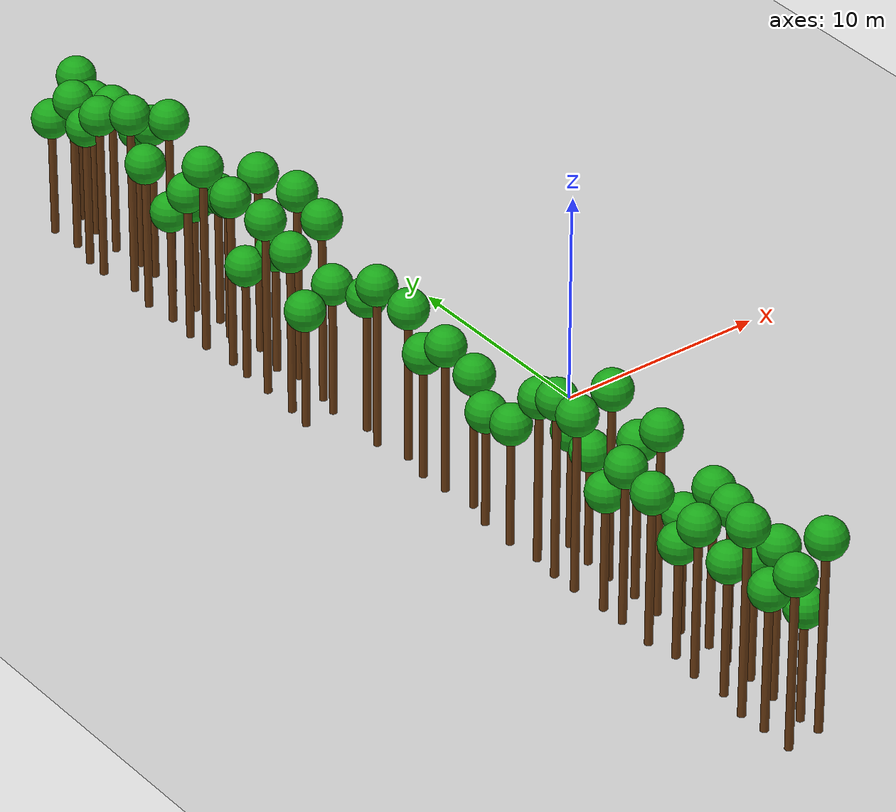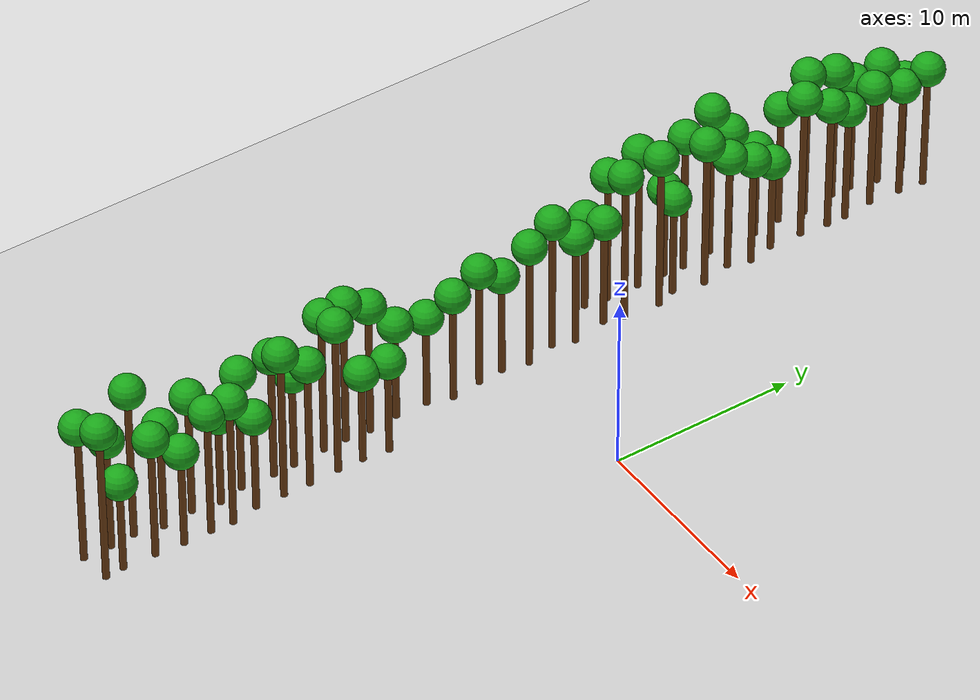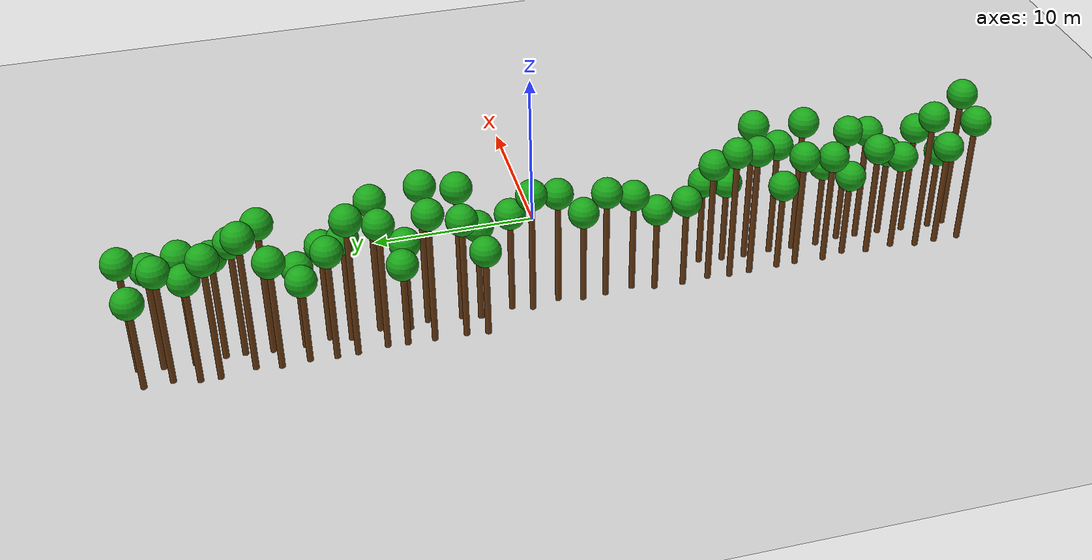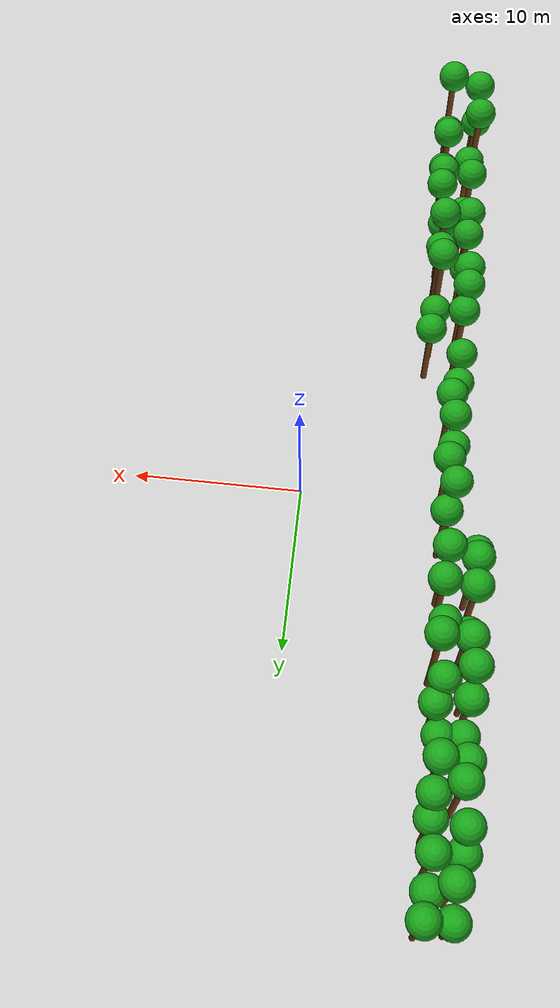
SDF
<sdf version="1.6">
 <world name="forest_world">
  <include><uri>model://sun</uri></include>
  <include><uri>model://ground_plane</uri></include>
  <model name="tree_360">
   <static>true</static>
   <link name="trunk">
    <collision name="collision">
     <pose>-10.23 5.11 2.66 0 0 0</pose>
     <geometry><cylinder><radius>0.18</radius><length>5.31</length></cylinder></geometry>
    </collision>
    <visual name="trunk_visual">
     <pose>-10.23 5.11 2.66 0 0 0</pose>
     <geometry><cylinder><radius>0.18</radius><length>5.31</length></cylinder></geometry>
     <material><ambient>0.35 0.20 0.05 1</ambient><diffuse>0.45 0.25 0.08 1</diffuse></material>
    </visual>
    <visual name="leaf_visual">
     <pose>-10.23 5.11 5.76 0 0 0</pose>
     <geometry><sphere><radius>0.9</radius></sphere></geometry>
     <material><ambient>0.05 0.45 0.05 1</ambient><diffuse>0.10 0.65 0.10 1</diffuse></material>
    </visual>
   </link>
  </model>
  <model name="tree_361">
   <static>true</static>
   <link name="trunk">
    <collision name="collision">
     <pose>-10.07 6.34 3.78 0 0 0</pose>
     <geometry><cylinder><radius>0.18</radius><length>7.55</length></cylinder></geometry>
    </collision>
    <visual name="trunk_visual">
     <pose>-10.07 6.34 3.78 0 0 0</pose>
     <geometry><cylinder><radius>0.18</radius><length>7.55</length></cylinder></geometry>
     <material><ambient>0.35 0.20 0.05 1</ambient><diffuse>0.45 0.25 0.08 1</diffuse></material>
    </visual>
    <visual name="leaf_visual">
     <pose>-10.07 6.34 8.00 0 0 0</pose>
     <geometry><sphere><radius>0.9</radius></sphere></geometry>
     <material><ambient>0.05 0.45 0.05 1</ambient><diffuse>0.10 0.65 0.10 1</diffuse></material>
    </visual>
   </link>
  </model>
  <model name="tree_362">
   <static>true</static>
   <link name="trunk">
    <collision name="collision">
     <pose>-10.02 8.17 4.11 0 0 0</pose>
     <geometry><cylinder><radius>0.18</radius><length>8.22</length></cylinder></geometry>
    </collision>
    <visual name="trunk_visual">
     <pose>-10.02 8.17 4.11 0 0 0</pose>
     <geometry><cylinder><radius>0.18</radius><length>8.22</length></cylinder></geometry>
     <material><ambient>0.35 0.20 0.05 1</ambient><diffuse>0.45 0.25 0.08 1</diffuse></material>
    </visual>
    <visual name="leaf_visual">
     <pose>-10.02 8.17 8.67 0 0 0</pose>
     <geometry><sphere><radius>0.9</radius></sphere></geometry>
     <material><ambient>0.05 0.45 0.05 1</ambient><diffuse>0.10 0.65 0.10 1</diffuse></material>
    </visual>
   </link>
  </model>
  <model name="tree_363">
   <static>true</static>
   <link name="trunk">
    <collision name="collision">
     <pose>-10.00 9.72 2.56 0 0 0</pose>
     <geometry><cylinder><radius>0.18</radius><length>5.12</length></cylinder></geometry>
    </collision>
    <visual name="trunk_visual">
     <pose>-10.00 9.72 2.56 0 0 0</pose>
     <geometry><cylinder><radius>0.18</radius><length>5.12</length></cylinder></geometry>
     <material><ambient>0.35 0.20 0.05 1</ambient><diffuse>0.45 0.25 0.08 1</diffuse></material>
    </visual>
    <visual name="leaf_visual">
     <pose>-10.00 9.72 5.57 0 0 0</pose>
     <geometry><sphere><radius>0.9</radius></sphere></geometry>
     <material><ambient>0.05 0.45 0.05 1</ambient><diffuse>0.10 0.65 0.10 1</diffuse></material>
    </visual>
   </link>
  </model>
  <model name="tree_364">
   <static>true</static>
   <link name="trunk">
    <collision name="collision">
     <pose>-9.92 10.86 3.99 0 0 0</pose>
     <geometry><cylinder><radius>0.18</radius><length>7.97</length></cylinder></geometry>
    </collision>
    <visual name="trunk_visual">
     <pose>-9.92 10.86 3.99 0 0 0</pose>
     <geometry><cylinder><radius>0.18</radius><length>7.97</length></cylinder></geometry>
     <material><ambient>0.35 0.20 0.05 1</ambient><diffuse>0.45 0.25 0.08 1</diffuse></material>
    </visual>
    <visual name="leaf_visual">
     <pose>-9.92 10.86 8.42 0 0 0</pose>
     <geometry><sphere><radius>0.9</radius></sphere></geometry>
     <material><ambient>0.05 0.45 0.05 1</ambient><diffuse>0.10 0.65 0.10 1</diffuse></material>
    </visual>
   </link>
  </model>
  <model name="tree_365">
   <static>true</static>
   <link name="trunk">
    <collision name="collision">
     <pose>-10.11 12.58 4.35 0 0 0</pose>
     <geometry><cylinder><radius>0.18</radius><length>8.71</length></cylinder></geometry>
    </collision>
    <visual name="trunk_visual">
     <pose>-10.11 12.58 4.35 0 0 0</pose>
     <geometry><cylinder><radius>0.18</radius><length>8.71</length></cylinder></geometry>
     <material><ambient>0.35 0.20 0.05 1</ambient><diffuse>0.45 0.25 0.08 1</diffuse></material>
    </visual>
    <visual name="leaf_visual">
     <pose>-10.11 12.58 9.16 0 0 0</pose>
     <geometry><sphere><radius>0.9</radius></sphere></geometry>
     <material><ambient>0.05 0.45 0.05 1</ambient><diffuse>0.10 0.65 0.10 1</diffuse></material>
    </visual>
   </link>
  </model>
  <model name="tree_366">
   <static>true</static>
   <link name="trunk">
    <collision name="collision">
     <pose>-10.13 13.76 3.43 0 0 0</pose>
     <geometry><cylinder><radius>0.18</radius><length>6.86</length></cylinder></geometry>
    </collision>
    <visual name="trunk_visual">
     <pose>-10.13 13.76 3.43 0 0 0</pose>
     <geometry><cylinder><radius>0.18</radius><length>6.86</length></cylinder></geometry>
     <material><ambient>0.35 0.20 0.05 1</ambient><diffuse>0.45 0.25 0.08 1</diffuse></material>
    </visual>
    <visual name="leaf_visual">
     <pose>-10.13 13.76 7.31 0 0 0</pose>
     <geometry><sphere><radius>0.9</radius></sphere></geometry>
     <material><ambient>0.05 0.45 0.05 1</ambient><diffuse>0.10 0.65 0.10 1</diffuse></material>
    </visual>
   </link>
  </model>
  <model name="tree_367">
   <static>true</static>
   <link name="trunk">
    <collision name="collision">
     <pose>-9.99 15.27 2.54 0 0 0</pose>
     <geometry><cylinder><radius>0.18</radius><length>5.09</length></cylinder></geometry>
    </collision>
    <visual name="trunk_visual">
     <pose>-9.99 15.27 2.54 0 0 0</pose>
     <geometry><cylinder><radius>0.18</radius><length>5.09</length></cylinder></geometry>
     <material><ambient>0.35 0.20 0.05 1</ambient><diffuse>0.45 0.25 0.08 1</diffuse></material>
    </visual>
    <visual name="leaf_visual">
     <pose>-9.99 15.27 5.54 0 0 0</pose>
     <geometry><sphere><radius>0.9</radius></sphere></geometry>
     <material><ambient>0.05 0.45 0.05 1</ambient><diffuse>0.10 0.65 0.10 1</diffuse></material>
    </visual>
   </link>
  </model>
  <model name="tree_368">
   <static>true</static>
   <link name="trunk">
    <collision name="collision">
     <pose>-10.16 16.85 3.40 0 0 0</pose>
     <geometry><cylinder><radius>0.18</radius><length>6.80</length></cylinder></geometry>
    </collision>
    <visual name="trunk_visual">
     <pose>-10.16 16.85 3.40 0 0 0</pose>
     <geometry><cylinder><radius>0.18</radius><length>6.80</length></cylinder></geometry>
     <material><ambient>0.35 0.20 0.05 1</ambient><diffuse>0.45 0.25 0.08 1</diffuse></material>
    </visual>
    <visual name="leaf_visual">
     <pose>-10.16 16.85 7.25 0 0 0</pose>
     <geometry><sphere><radius>0.9</radius></sphere></geometry>
     <material><ambient>0.05 0.45 0.05 1</ambient><diffuse>0.10 0.65 0.10 1</diffuse></material>
    </visual>
   </link>
  </model>
  <model name="tree_369">
   <static>true</static>
   <link name="trunk">
    <collision name="collision">
     <pose>-9.92 18.27 4.25 0 0 0</pose>
     <geometry><cylinder><radius>0.18</radius><length>8.49</length></cylinder></geometry>
    </collision>
    <visual name="trunk_visual">
     <pose>-9.92 18.27 4.25 0 0 0</pose>
     <geometry><cylinder><radius>0.18</radius><length>8.49</length></cylinder></geometry>
     <material><ambient>0.35 0.20 0.05 1</ambient><diffuse>0.45 0.25 0.08 1</diffuse></material>
    </visual>
    <visual name="leaf_visual">
     <pose>-9.92 18.27 8.94 0 0 0</pose>
     <geometry><sphere><radius>0.9</radius></sphere></geometry>
     <material><ambient>0.05 0.45 0.05 1</ambient><diffuse>0.10 0.65 0.10 1</diffuse></material>
    </visual>
   </link>
  </model>
  <model name="tree_370">
   <static>true</static>
   <link name="trunk">
    <collision name="collision">
     <pose>-10.22 20.22 3.81 0 0 0</pose>
     <geometry><cylinder><radius>0.18</radius><length>7.63</length></cylinder></geometry>
    </collision>
    <visual name="trunk_visual">
     <pose>-10.22 20.22 3.81 0 0 0</pose>
     <geometry><cylinder><radius>0.18</radius><length>7.63</length></cylinder></geometry>
     <material><ambient>0.35 0.20 0.05 1</ambient><diffuse>0.45 0.25 0.08 1</diffuse></material>
    </visual>
    <visual name="leaf_visual">
     <pose>-10.22 20.22 8.08 0 0 0</pose>
     <geometry><sphere><radius>0.9</radius></sphere></geometry>
     <material><ambient>0.05 0.45 0.05 1</ambient><diffuse>0.10 0.65 0.10 1</diffuse></material>
    </visual>
   </link>
  </model>
  <model name="tree_371">
   <static>true</static>
   <link name="trunk">
    <collision name="collision">
     <pose>-10.20 21.33 3.27 0 0 0</pose>
     <geometry><cylinder><radius>0.18</radius><length>6.54</length></cylinder></geometry>
    </collision>
    <visual name="trunk_visual">
     <pose>-10.20 21.33 3.27 0 0 0</pose>
     <geometry><cylinder><radius>0.18</radius><length>6.54</length></cylinder></geometry>
     <material><ambient>0.35 0.20 0.05 1</ambient><diffuse>0.45 0.25 0.08 1</diffuse></material>
    </visual>
    <visual name="leaf_visual">
     <pose>-10.20 21.33 6.99 0 0 0</pose>
     <geometry><sphere><radius>0.9</radius></sphere></geometry>
     <material><ambient>0.05 0.45 0.05 1</ambient><diffuse>0.10 0.65 0.10 1</diffuse></material>
    </visual>
   </link>
  </model>
  <model name="tree_372">
   <static>true</static>
   <link name="trunk">
    <collision name="collision">
     <pose>-9.86 22.79 3.53 0 0 0</pose>
     <geometry><cylinder><radius>0.18</radius><length>7.07</length></cylinder></geometry>
    </collision>
    <visual name="trunk_visual">
     <pose>-9.86 22.79 3.53 0 0 0</pose>
     <geometry><cylinder><radius>0.18</radius><length>7.07</length></cylinder></geometry>
     <material><ambient>0.35 0.20 0.05 1</ambient><diffuse>0.45 0.25 0.08 1</diffuse></material>
    </visual>
    <visual name="leaf_visual">
     <pose>-9.86 22.79 7.52 0 0 0</pose>
     <geometry><sphere><radius>0.9</radius></sphere></geometry>
     <material><ambient>0.05 0.45 0.05 1</ambient><diffuse>0.10 0.65 0.10 1</diffuse></material>
    </visual>
   </link>
  </model>
  <model name="tree_373">
   <static>true</static>
   <link name="trunk">
    <collision name="collision">
     <pose>-9.98 24.38 2.71 0 0 0</pose>
     <geometry><cylinder><radius>0.18</radius><length>5.41</length></cylinder></geometry>
    </collision>
    <visual name="trunk_visual">
     <pose>-9.98 24.38 2.71 0 0 0</pose>
     <geometry><cylinder><radius>0.18</radius><length>5.41</length></cylinder></geometry>
     <material><ambient>0.35 0.20 0.05 1</ambient><diffuse>0.45 0.25 0.08 1</diffuse></material>
    </visual>
    <visual name="leaf_visual">
     <pose>-9.98 24.38 5.86 0 0 0</pose>
     <geometry><sphere><radius>0.9</radius></sphere></geometry>
     <material><ambient>0.05 0.45 0.05 1</ambient><diffuse>0.10 0.65 0.10 1</diffuse></material>
    </visual>
   </link>
  </model>
  <model name="tree_374">
   <static>true</static>
   <link name="trunk">
    <collision name="collision">
     <pose>-8.63 -24.94 3.98 0 0 0</pose>
     <geometry><cylinder><radius>0.18</radius><length>7.95</length></cylinder></geometry>
    </collision>
    <visual name="trunk_visual">
     <pose>-8.63 -24.94 3.98 0 0 0</pose>
     <geometry><cylinder><radius>0.18</radius><length>7.95</length></cylinder></geometry>
     <material><ambient>0.35 0.20 0.05 1</ambient><diffuse>0.45 0.25 0.08 1</diffuse></material>
    </visual>
    <visual name="leaf_visual">
     <pose>-8.63 -24.94 8.40 0 0 0</pose>
     <geometry><sphere><radius>0.9</radius></sphere></geometry>
     <material><ambient>0.05 0.45 0.05 1</ambient><diffuse>0.10 0.65 0.10 1</diffuse></material>
    </visual>
   </link>
  </model>
  <model name="tree_375">
   <static>true</static>
   <link name="trunk">
    <collision name="collision">
     <pose>-8.62 -23.42 3.20 0 0 0</pose>
     <geometry><cylinder><radius>0.18</radius><length>6.39</length></cylinder></geometry>
    </collision>
    <visual name="trunk_visual">
     <pose>-8.62 -23.42 3.20 0 0 0</pose>
     <geometry><cylinder><radius>0.18</radius><length>6.39</length></cylinder></geometry>
     <material><ambient>0.35 0.20 0.05 1</ambient><diffuse>0.45 0.25 0.08 1</diffuse></material>
    </visual>
    <visual name="leaf_visual">
     <pose>-8.62 -23.42 6.84 0 0 0</pose>
     <geometry><sphere><radius>0.9</radius></sphere></geometry>
     <material><ambient>0.05 0.45 0.05 1</ambient><diffuse>0.10 0.65 0.10 1</diffuse></material>
    </visual>
   </link>
  </model>
  <model name="tree_376">
   <static>true</static>
   <link name="trunk">
    <collision name="collision">
     <pose>-8.70 -22.10 4.37 0 0 0</pose>
     <geometry><cylinder><radius>0.18</radius><length>8.74</length></cylinder></geometry>
    </collision>
    <visual name="trunk_visual">
     <pose>-8.70 -22.10 4.37 0 0 0</pose>
     <geometry><cylinder><radius>0.18</radius><length>8.74</length></cylinder></geometry>
     <material><ambient>0.35 0.20 0.05 1</ambient><diffuse>0.45 0.25 0.08 1</diffuse></material>
    </visual>
    <visual name="leaf_visual">
     <pose>-8.70 -22.10 9.19 0 0 0</pose>
     <geometry><sphere><radius>0.9</radius></sphere></geometry>
     <material><ambient>0.05 0.45 0.05 1</ambient><diffuse>0.10 0.65 0.10 1</diffuse></material>
    </visual>
   </link>
  </model>
  <model name="tree_377">
   <static>true</static>
   <link name="trunk">
    <collision name="collision">
     <pose>-8.38 -20.61 3.01 0 0 0</pose>
     <geometry><cylinder><radius>0.18</radius><length>6.02</length></cylinder></geometry>
    </collision>
    <visual name="trunk_visual">
     <pose>-8.38 -20.61 3.01 0 0 0</pose>
     <geometry><cylinder><radius>0.18</radius><length>6.02</length></cylinder></geometry>
     <material><ambient>0.35 0.20 0.05 1</ambient><diffuse>0.45 0.25 0.08 1</diffuse></material>
    </visual>
    <visual name="leaf_visual">
     <pose>-8.38 -20.61 6.47 0 0 0</pose>
     <geometry><sphere><radius>0.9</radius></sphere></geometry>
     <material><ambient>0.05 0.45 0.05 1</ambient><diffuse>0.10 0.65 0.10 1</diffuse></material>
    </visual>
   </link>
  </model>
  <model name="tree_378">
   <static>true</static>
   <link name="trunk">
    <collision name="collision">
     <pose>-8.53 -18.92 3.47 0 0 0</pose>
     <geometry><cylinder><radius>0.18</radius><length>6.93</length></cylinder></geometry>
    </collision>
    <visual name="trunk_visual">
     <pose>-8.53 -18.92 3.47 0 0 0</pose>
     <geometry><cylinder><radius>0.18</radius><length>6.93</length></cylinder></geometry>
     <material><ambient>0.35 0.20 0.05 1</ambient><diffuse>0.45 0.25 0.08 1</diffuse></material>
    </visual>
    <visual name="leaf_visual">
     <pose>-8.53 -18.92 7.38 0 0 0</pose>
     <geometry><sphere><radius>0.9</radius></sphere></geometry>
     <material><ambient>0.05 0.45 0.05 1</ambient><diffuse>0.10 0.65 0.10 1</diffuse></material>
    </visual>
   </link>
  </model>
  <model name="tree_379">
   <static>true</static>
   <link name="trunk">
    <collision name="collision">
     <pose>-8.28 -17.44 2.56 0 0 0</pose>
     <geometry><cylinder><radius>0.18</radius><length>5.12</length></cylinder></geometry>
    </collision>
    <visual name="trunk_visual">
     <pose>-8.28 -17.44 2.56 0 0 0</pose>
     <geometry><cylinder><radius>0.18</radius><length>5.12</length></cylinder></geometry>
     <material><ambient>0.35 0.20 0.05 1</ambient><diffuse>0.45 0.25 0.08 1</diffuse></material>
    </visual>
    <visual name="leaf_visual">
     <pose>-8.28 -17.44 5.57 0 0 0</pose>
     <geometry><sphere><radius>0.9</radius></sphere></geometry>
     <material><ambient>0.05 0.45 0.05 1</ambient><diffuse>0.10 0.65 0.10 1</diffuse></material>
    </visual>
   </link>
  </model>
  <model name="tree_380">
   <static>true</static>
   <link name="trunk">
    <collision name="collision">
     <pose>-8.59 -16.06 3.45 0 0 0</pose>
     <geometry><cylinder><radius>0.18</radius><length>6.91</length></cylinder></geometry>
    </collision>
    <visual name="trunk_visual">
     <pose>-8.59 -16.06 3.45 0 0 0</pose>
     <geometry><cylinder><radius>0.18</radius><length>6.91</length></cylinder></geometry>
     <material><ambient>0.35 0.20 0.05 1</ambient><diffuse>0.45 0.25 0.08 1</diffuse></material>
    </visual>
    <visual name="leaf_visual">
     <pose>-8.59 -16.06 7.36 0 0 0</pose>
     <geometry><sphere><radius>0.9</radius></sphere></geometry>
     <material><ambient>0.05 0.45 0.05 1</ambient><diffuse>0.10 0.65 0.10 1</diffuse></material>
    </visual>
   </link>
  </model>
  <model name="tree_381">
   <static>true</static>
   <link name="trunk">
    <collision name="collision">
     <pose>-8.51 -14.27 3.58 0 0 0</pose>
     <geometry><cylinder><radius>0.18</radius><length>7.17</length></cylinder></geometry>
    </collision>
    <visual name="trunk_visual">
     <pose>-8.51 -14.27 3.58 0 0 0</pose>
     <geometry><cylinder><radius>0.18</radius><length>7.17</length></cylinder></geometry>
     <material><ambient>0.35 0.20 0.05 1</ambient><diffuse>0.45 0.25 0.08 1</diffuse></material>
    </visual>
    <visual name="leaf_visual">
     <pose>-8.51 -14.27 7.62 0 0 0</pose>
     <geometry><sphere><radius>0.9</radius></sphere></geometry>
     <material><ambient>0.05 0.45 0.05 1</ambient><diffuse>0.10 0.65 0.10 1</diffuse></material>
    </visual>
   </link>
  </model>
  <model name="tree_382">
   <static>true</static>
   <link name="trunk">
    <collision name="collision">
     <pose>-8.55 -13.09 2.68 0 0 0</pose>
     <geometry><cylinder><radius>0.18</radius><length>5.36</length></cylinder></geometry>
    </collision>
    <visual name="trunk_visual">
     <pose>-8.55 -13.09 2.68 0 0 0</pose>
     <geometry><cylinder><radius>0.18</radius><length>5.36</length></cylinder></geometry>
     <material><ambient>0.35 0.20 0.05 1</ambient><diffuse>0.45 0.25 0.08 1</diffuse></material>
    </visual>
    <visual name="leaf_visual">
     <pose>-8.55 -13.09 5.81 0 0 0</pose>
     <geometry><sphere><radius>0.9</radius></sphere></geometry>
     <material><ambient>0.05 0.45 0.05 1</ambient><diffuse>0.10 0.65 0.10 1</diffuse></material>
    </visual>
   </link>
  </model>
  <model name="tree_383">
   <static>true</static>
   <link name="trunk">
    <collision name="collision">
     <pose>-8.65 -11.30 4.06 0 0 0</pose>
     <geometry><cylinder><radius>0.18</radius><length>8.13</length></cylinder></geometry>
    </collision>
    <visual name="trunk_visual">
     <pose>-8.65 -11.30 4.06 0 0 0</pose>
     <geometry><cylinder><radius>0.18</radius><length>8.13</length></cylinder></geometry>
     <material><ambient>0.35 0.20 0.05 1</ambient><diffuse>0.45 0.25 0.08 1</diffuse></material>
    </visual>
    <visual name="leaf_visual">
     <pose>-8.65 -11.30 8.58 0 0 0</pose>
     <geometry><sphere><radius>0.9</radius></sphere></geometry>
     <material><ambient>0.05 0.45 0.05 1</ambient><diffuse>0.10 0.65 0.10 1</diffuse></material>
    </visual>
   </link>
  </model>
  <model name="tree_384">
   <static>true</static>
   <link name="trunk">
    <collision name="collision">
     <pose>-8.68 -10.02 4.12 0 0 0</pose>
     <geometry><cylinder><radius>0.18</radius><length>8.25</length></cylinder></geometry>
    </collision>
    <visual name="trunk_visual">
     <pose>-8.68 -10.02 4.12 0 0 0</pose>
     <geometry><cylinder><radius>0.18</radius><length>8.25</length></cylinder></geometry>
     <material><ambient>0.35 0.20 0.05 1</ambient><diffuse>0.45 0.25 0.08 1</diffuse></material>
    </visual>
    <visual name="leaf_visual">
     <pose>-8.68 -10.02 8.70 0 0 0</pose>
     <geometry><sphere><radius>0.9</radius></sphere></geometry>
     <material><ambient>0.05 0.45 0.05 1</ambient><diffuse>0.10 0.65 0.10 1</diffuse></material>
    </visual>
   </link>
  </model>
  <model name="tree_385">
   <static>true</static>
   <link name="trunk">
    <collision name="collision">
     <pose>-8.54 -8.69 3.78 0 0 0</pose>
     <geometry><cylinder><radius>0.18</radius><length>7.56</length></cylinder></geometry>
    </collision>
    <visual name="trunk_visual">
     <pose>-8.54 -8.69 3.78 0 0 0</pose>
     <geometry><cylinder><radius>0.18</radius><length>7.56</length></cylinder></geometry>
     <material><ambient>0.35 0.20 0.05 1</ambient><diffuse>0.45 0.25 0.08 1</diffuse></material>
    </visual>
    <visual name="leaf_visual">
     <pose>-8.54 -8.69 8.01 0 0 0</pose>
     <geometry><sphere><radius>0.9</radius></sphere></geometry>
     <material><ambient>0.05 0.45 0.05 1</ambient><diffuse>0.10 0.65 0.10 1</diffuse></material>
    </visual>
   </link>
  </model>
  <model name="tree_386">
   <static>true</static>
   <link name="trunk">
    <collision name="collision">
     <pose>-8.71 -7.07 2.73 0 0 0</pose>
     <geometry><cylinder><radius>0.18</radius><length>5.46</length></cylinder></geometry>
    </collision>
    <visual name="trunk_visual">
     <pose>-8.71 -7.07 2.73 0 0 0</pose>
     <geometry><cylinder><radius>0.18</radius><length>5.46</length></cylinder></geometry>
     <material><ambient>0.35 0.20 0.05 1</ambient><diffuse>0.45 0.25 0.08 1</diffuse></material>
    </visual>
    <visual name="leaf_visual">
     <pose>-8.71 -7.07 5.91 0 0 0</pose>
     <geometry><sphere><radius>0.9</radius></sphere></geometry>
     <material><ambient>0.05 0.45 0.05 1</ambient><diffuse>0.10 0.65 0.10 1</diffuse></material>
    </visual>
   </link>
  </model>
  <model name="tree_387">
   <static>true</static>
   <link name="trunk">
    <collision name="collision">
     <pose>-8.65 -5.33 2.56 0 0 0</pose>
     <geometry><cylinder><radius>0.18</radius><length>5.12</length></cylinder></geometry>
    </collision>
    <visual name="trunk_visual">
     <pose>-8.65 -5.33 2.56 0 0 0</pose>
     <geometry><cylinder><radius>0.18</radius><length>5.12</length></cylinder></geometry>
     <material><ambient>0.35 0.20 0.05 1</ambient><diffuse>0.45 0.25 0.08 1</diffuse></material>
    </visual>
    <visual name="leaf_visual">
     <pose>-8.65 -5.33 5.57 0 0 0</pose>
     <geometry><sphere><radius>0.9</radius></sphere></geometry>
     <material><ambient>0.05 0.45 0.05 1</ambient><diffuse>0.10 0.65 0.10 1</diffuse></material>
    </visual>
   </link>
  </model>
  <model name="tree_388">
   <static>true</static>
   <link name="trunk">
    <collision name="collision">
     <pose>-8.27 -4.02 3.06 0 0 0</pose>
     <geometry><cylinder><radius>0.18</radius><length>6.12</length></cylinder></geometry>
    </collision>
    <visual name="trunk_visual">
     <pose>-8.27 -4.02 3.06 0 0 0</pose>
     <geometry><cylinder><radius>0.18</radius><length>6.12</length></cylinder></geometry>
     <material><ambient>0.35 0.20 0.05 1</ambient><diffuse>0.45 0.25 0.08 1</diffuse></material>
    </visual>
    <visual name="leaf_visual">
     <pose>-8.27 -4.02 6.57 0 0 0</pose>
     <geometry><sphere><radius>0.9</radius></sphere></geometry>
     <material><ambient>0.05 0.45 0.05 1</ambient><diffuse>0.10 0.65 0.10 1</diffuse></material>
    </visual>
   </link>
  </model>
  <model name="tree_389">
   <static>true</static>
   <link name="trunk">
    <collision name="collision">
     <pose>-8.48 -2.35 3.36 0 0 0</pose>
     <geometry><cylinder><radius>0.18</radius><length>6.73</length></cylinder></geometry>
    </collision>
    <visual name="trunk_visual">
     <pose>-8.48 -2.35 3.36 0 0 0</pose>
     <geometry><cylinder><radius>0.18</radius><length>6.73</length></cylinder></geometry>
     <material><ambient>0.35 0.20 0.05 1</ambient><diffuse>0.45 0.25 0.08 1</diffuse></material>
    </visual>
    <visual name="leaf_visual">
     <pose>-8.48 -2.35 7.18 0 0 0</pose>
     <geometry><sphere><radius>0.9</radius></sphere></geometry>
     <material><ambient>0.05 0.45 0.05 1</ambient><diffuse>0.10 0.65 0.10 1</diffuse></material>
    </visual>
   </link>
  </model>
  <model name="tree_390">
   <static>true</static>
   <link name="trunk">
    <collision name="collision">
     <pose>-8.58 -0.96 2.84 0 0 0</pose>
     <geometry><cylinder><radius>0.18</radius><length>5.68</length></cylinder></geometry>
    </collision>
    <visual name="trunk_visual">
     <pose>-8.58 -0.96 2.84 0 0 0</pose>
     <geometry><cylinder><radius>0.18</radius><length>5.68</length></cylinder></geometry>
     <material><ambient>0.35 0.20 0.05 1</ambient><diffuse>0.45 0.25 0.08 1</diffuse></material>
    </visual>
    <visual name="leaf_visual">
     <pose>-8.58 -0.96 6.13 0 0 0</pose>
     <geometry><sphere><radius>0.9</radius></sphere></geometry>
     <material><ambient>0.05 0.45 0.05 1</ambient><diffuse>0.10 0.65 0.10 1</diffuse></material>
    </visual>
   </link>
  </model>
  <model name="tree_391">
   <static>true</static>
   <link name="trunk">
    <collision name="collision">
     <pose>-8.28 0.47 3.52 0 0 0</pose>
     <geometry><cylinder><radius>0.18</radius><length>7.04</length></cylinder></geometry>
    </collision>
    <visual name="trunk_visual">
     <pose>-8.28 0.47 3.52 0 0 0</pose>
     <geometry><cylinder><radius>0.18</radius><length>7.04</length></cylinder></geometry>
     <material><ambient>0.35 0.20 0.05 1</ambient><diffuse>0.45 0.25 0.08 1</diffuse></material>
    </visual>
    <visual name="leaf_visual">
     <pose>-8.28 0.47 7.49 0 0 0</pose>
     <geometry><sphere><radius>0.9</radius></sphere></geometry>
     <material><ambient>0.05 0.45 0.05 1</ambient><diffuse>0.10 0.65 0.10 1</diffuse></material>
    </visual>
   </link>
  </model>
  <model name="tree_392">
   <static>true</static>
   <link name="trunk">
    <collision name="collision">
     <pose>-8.70 2.10 3.76 0 0 0</pose>
     <geometry><cylinder><radius>0.18</radius><length>7.52</length></cylinder></geometry>
    </collision>
    <visual name="trunk_visual">
     <pose>-8.70 2.10 3.76 0 0 0</pose>
     <geometry><cylinder><radius>0.18</radius><length>7.52</length></cylinder></geometry>
     <material><ambient>0.35 0.20 0.05 1</ambient><diffuse>0.45 0.25 0.08 1</diffuse></material>
    </visual>
    <visual name="leaf_visual">
     <pose>-8.70 2.10 7.97 0 0 0</pose>
     <geometry><sphere><radius>0.9</radius></sphere></geometry>
     <material><ambient>0.05 0.45 0.05 1</ambient><diffuse>0.10 0.65 0.10 1</diffuse></material>
    </visual>
   </link>
  </model>
  <model name="tree_393">
   <static>true</static>
   <link name="trunk">
    <collision name="collision">
     <pose>-8.36 3.27 3.12 0 0 0</pose>
     <geometry><cylinder><radius>0.18</radius><length>6.23</length></cylinder></geometry>
    </collision>
    <visual name="trunk_visual">
     <pose>-8.36 3.27 3.12 0 0 0</pose>
     <geometry><cylinder><radius>0.18</radius><length>6.23</length></cylinder></geometry>
     <material><ambient>0.35 0.20 0.05 1</ambient><diffuse>0.45 0.25 0.08 1</diffuse></material>
    </visual>
    <visual name="leaf_visual">
     <pose>-8.36 3.27 6.68 0 0 0</pose>
     <geometry><sphere><radius>0.9</radius></sphere></geometry>
     <material><ambient>0.05 0.45 0.05 1</ambient><diffuse>0.10 0.65 0.10 1</diffuse></material>
    </visual>
   </link>
  </model>
  <model name="tree_394">
   <static>true</static>
   <link name="trunk">
    <collision name="collision">
     <pose>-8.73 5.20 3.00 0 0 0</pose>
     <geometry><cylinder><radius>0.18</radius><length>6.00</length></cylinder></geometry>
    </collision>
    <visual name="trunk_visual">
     <pose>-8.73 5.20 3.00 0 0 0</pose>
     <geometry><cylinder><radius>0.18</radius><length>6.00</length></cylinder></geometry>
     <material><ambient>0.35 0.20 0.05 1</ambient><diffuse>0.45 0.25 0.08 1</diffuse></material>
    </visual>
    <visual name="leaf_visual">
     <pose>-8.73 5.20 6.45 0 0 0</pose>
     <geometry><sphere><radius>0.9</radius></sphere></geometry>
     <material><ambient>0.05 0.45 0.05 1</ambient><diffuse>0.10 0.65 0.10 1</diffuse></material>
    </visual>
   </link>
  </model>
  <model name="tree_395">
   <static>true</static>
   <link name="trunk">
    <collision name="collision">
     <pose>-8.47 6.27 4.30 0 0 0</pose>
     <geometry><cylinder><radius>0.18</radius><length>8.60</length></cylinder></geometry>
    </collision>
    <visual name="trunk_visual">
     <pose>-8.47 6.27 4.30 0 0 0</pose>
     <geometry><cylinder><radius>0.18</radius><length>8.60</length></cylinder></geometry>
     <material><ambient>0.35 0.20 0.05 1</ambient><diffuse>0.45 0.25 0.08 1</diffuse></material>
    </visual>
    <visual name="leaf_visual">
     <pose>-8.47 6.27 9.05 0 0 0</pose>
     <geometry><sphere><radius>0.9</radius></sphere></geometry>
     <material><ambient>0.05 0.45 0.05 1</ambient><diffuse>0.10 0.65 0.10 1</diffuse></material>
    </visual>
   </link>
  </model>
  <model name="tree_396">
   <static>true</static>
   <link name="trunk">
    <collision name="collision">
     <pose>-8.30 8.25 4.47 0 0 0</pose>
     <geometry><cylinder><radius>0.18</radius><length>8.95</length></cylinder></geometry>
    </collision>
    <visual name="trunk_visual">
     <pose>-8.30 8.25 4.47 0 0 0</pose>
     <geometry><cylinder><radius>0.18</radius><length>8.95</length></cylinder></geometry>
     <material><ambient>0.35 0.20 0.05 1</ambient><diffuse>0.45 0.25 0.08 1</diffuse></material>
    </visual>
    <visual name="leaf_visual">
     <pose>-8.30 8.25 9.40 0 0 0</pose>
     <geometry><sphere><radius>0.9</radius></sphere></geometry>
     <material><ambient>0.05 0.45 0.05 1</ambient><diffuse>0.10 0.65 0.10 1</diffuse></material>
    </visual>
   </link>
  </model>
  <model name="tree_397">
   <static>true</static>
   <link name="trunk">
    <collision name="collision">
     <pose>-8.69 9.34 2.79 0 0 0</pose>
     <geometry><cylinder><radius>0.18</radius><length>5.59</length></cylinder></geometry>
    </collision>
    <visual name="trunk_visual">
     <pose>-8.69 9.34 2.79 0 0 0</pose>
     <geometry><cylinder><radius>0.18</radius><length>5.59</length></cylinder></geometry>
     <material><ambient>0.35 0.20 0.05 1</ambient><diffuse>0.45 0.25 0.08 1</diffuse></material>
    </visual>
    <visual name="leaf_visual">
     <pose>-8.69 9.34 6.04 0 0 0</pose>
     <geometry><sphere><radius>0.9</radius></sphere></geometry>
     <material><ambient>0.05 0.45 0.05 1</ambient><diffuse>0.10 0.65 0.10 1</diffuse></material>
    </visual>
   </link>
  </model>
  <model name="tree_398">
   <static>true</static>
   <link name="trunk">
    <collision name="collision">
     <pose>-8.34 11.03 4.26 0 0 0</pose>
     <geometry><cylinder><radius>0.18</radius><length>8.52</length></cylinder></geometry>
    </collision>
    <visual name="trunk_visual">
     <pose>-8.34 11.03 4.26 0 0 0</pose>
     <geometry><cylinder><radius>0.18</radius><length>8.52</length></cylinder></geometry>
     <material><ambient>0.35 0.20 0.05 1</ambient><diffuse>0.45 0.25 0.08 1</diffuse></material>
    </visual>
    <visual name="leaf_visual">
     <pose>-8.34 11.03 8.97 0 0 0</pose>
     <geometry><sphere><radius>0.9</radius></sphere></geometry>
     <material><ambient>0.05 0.45 0.05 1</ambient><diffuse>0.10 0.65 0.10 1</diffuse></material>
    </visual>
   </link>
  </model>
  <model name="tree_399">
   <static>true</static>
   <link name="trunk">
    <collision name="collision">
     <pose>-8.75 12.72 3.30 0 0 0</pose>
     <geometry><cylinder><radius>0.18</radius><length>6.61</length></cylinder></geometry>
    </collision>
    <visual name="trunk_visual">
     <pose>-8.75 12.72 3.30 0 0 0</pose>
     <geometry><cylinder><radius>0.18</radius><length>6.61</length></cylinder></geometry>
     <material><ambient>0.35 0.20 0.05 1</ambient><diffuse>0.45 0.25 0.08 1</diffuse></material>
    </visual>
    <visual name="leaf_visual">
     <pose>-8.75 12.72 7.06 0 0 0</pose>
     <geometry><sphere><radius>0.9</radius></sphere></geometry>
     <material><ambient>0.05 0.45 0.05 1</ambient><diffuse>0.10 0.65 0.10 1</diffuse></material>
    </visual>
   </link>
  </model>
  <model name="tree_400">
   <static>true</static>
   <link name="trunk">
    <collision name="collision">
     <pose>-8.41 13.92 3.05 0 0 0</pose>
     <geometry><cylinder><radius>0.18</radius><length>6.10</length></cylinder></geometry>
    </collision>
    <visual name="trunk_visual">
     <pose>-8.41 13.92 3.05 0 0 0</pose>
     <geometry><cylinder><radius>0.18</radius><length>6.10</length></cylinder></geometry>
     <material><ambient>0.35 0.20 0.05 1</ambient><diffuse>0.45 0.25 0.08 1</diffuse></material>
    </visual>
    <visual name="leaf_visual">
     <pose>-8.41 13.92 6.55 0 0 0</pose>
     <geometry><sphere><radius>0.9</radius></sphere></geometry>
     <material><ambient>0.05 0.45 0.05 1</ambient><diffuse>0.10 0.65 0.10 1</diffuse></material>
    </visual>
   </link>
  </model>
  <model name="tree_401">
   <static>true</static>
   <link name="trunk">
    <collision name="collision">
     <pose>-8.71 15.34 2.55 0 0 0</pose>
     <geometry><cylinder><radius>0.18</radius><length>5.09</length></cylinder></geometry>
    </collision>
    <visual name="trunk_visual">
     <pose>-8.71 15.34 2.55 0 0 0</pose>
     <geometry><cylinder><radius>0.18</radius><length>5.09</length></cylinder></geometry>
     <material><ambient>0.35 0.20 0.05 1</ambient><diffuse>0.45 0.25 0.08 1</diffuse></material>
    </visual>
    <visual name="leaf_visual">
     <pose>-8.71 15.34 5.54 0 0 0</pose>
     <geometry><sphere><radius>0.9</radius></sphere></geometry>
     <material><ambient>0.05 0.45 0.05 1</ambient><diffuse>0.10 0.65 0.10 1</diffuse></material>
    </visual>
   </link>
  </model>
  <model name="tree_402">
   <static>true</static>
   <link name="trunk">
    <collision name="collision">
     <pose>-8.67 17.16 4.17 0 0 0</pose>
     <geometry><cylinder><radius>0.18</radius><length>8.33</length></cylinder></geometry>
    </collision>
    <visual name="trunk_visual">
     <pose>-8.67 17.16 4.17 0 0 0</pose>
     <geometry><cylinder><radius>0.18</radius><length>8.33</length></cylinder></geometry>
     <material><ambient>0.35 0.20 0.05 1</ambient><diffuse>0.45 0.25 0.08 1</diffuse></material>
    </visual>
    <visual name="leaf_visual">
     <pose>-8.67 17.16 8.78 0 0 0</pose>
     <geometry><sphere><radius>0.9</radius></sphere></geometry>
     <material><ambient>0.05 0.45 0.05 1</ambient><diffuse>0.10 0.65 0.10 1</diffuse></material>
    </visual>
   </link>
  </model>
  <model name="tree_403">
   <static>true</static>
   <link name="trunk">
    <collision name="collision">
     <pose>-8.52 18.71 3.63 0 0 0</pose>
     <geometry><cylinder><radius>0.18</radius><length>7.27</length></cylinder></geometry>
    </collision>
    <visual name="trunk_visual">
     <pose>-8.52 18.71 3.63 0 0 0</pose>
     <geometry><cylinder><radius>0.18</radius><length>7.27</length></cylinder></geometry>
     <material><ambient>0.35 0.20 0.05 1</ambient><diffuse>0.45 0.25 0.08 1</diffuse></material>
    </visual>
    <visual name="leaf_visual">
     <pose>-8.52 18.71 7.72 0 0 0</pose>
     <geometry><sphere><radius>0.9</radius></sphere></geometry>
     <material><ambient>0.05 0.45 0.05 1</ambient><diffuse>0.10 0.65 0.10 1</diffuse></material>
    </visual>
   </link>
  </model>
  <model name="tree_404">
   <static>true</static>
   <link name="trunk">
    <collision name="collision">
     <pose>-8.50 19.79 3.27 0 0 0</pose>
     <geometry><cylinder><radius>0.18</radius><length>6.54</length></cylinder></geometry>
    </collision>
    <visual name="trunk_visual">
     <pose>-8.50 19.79 3.27 0 0 0</pose>
     <geometry><cylinder><radius>0.18</radius><length>6.54</length></cylinder></geometry>
     <material><ambient>0.35 0.20 0.05 1</ambient><diffuse>0.45 0.25 0.08 1</diffuse></material>
    </visual>
    <visual name="leaf_visual">
     <pose>-8.50 19.79 6.99 0 0 0</pose>
     <geometry><sphere><radius>0.9</radius></sphere></geometry>
     <material><ambient>0.05 0.45 0.05 1</ambient><diffuse>0.10 0.65 0.10 1</diffuse></material>
    </visual>
   </link>
  </model>
  <model name="tree_405">
   <static>true</static>
   <link name="trunk">
    <collision name="collision">
     <pose>-8.69 21.47 3.51 0 0 0</pose>
     <geometry><cylinder><radius>0.18</radius><length>7.02</length></cylinder></geometry>
    </collision>
    <visual name="trunk_visual">
     <pose>-8.69 21.47 3.51 0 0 0</pose>
     <geometry><cylinder><radius>0.18</radius><length>7.02</length></cylinder></geometry>
     <material><ambient>0.35 0.20 0.05 1</ambient><diffuse>0.45 0.25 0.08 1</diffuse></material>
    </visual>
    <visual name="leaf_visual">
     <pose>-8.69 21.47 7.47 0 0 0</pose>
     <geometry><sphere><radius>0.9</radius></sphere></geometry>
     <material><ambient>0.05 0.45 0.05 1</ambient><diffuse>0.10 0.65 0.10 1</diffuse></material>
    </visual>
   </link>
  </model>
  <model name="tree_406">
   <static>true</static>
   <link name="trunk">
    <collision name="collision">
     <pose>-8.57 23.21 3.21 0 0 0</pose>
     <geometry><cylinder><radius>0.18</radius><length>6.41</length></cylinder></geometry>
    </collision>
    <visual name="trunk_visual">
     <pose>-8.57 23.21 3.21 0 0 0</pose>
     <geometry><cylinder><radius>0.18</radius><length>6.41</length></cylinder></geometry>
     <material><ambient>0.35 0.20 0.05 1</ambient><diffuse>0.45 0.25 0.08 1</diffuse></material>
    </visual>
    <visual name="leaf_visual">
     <pose>-8.57 23.21 6.86 0 0 0</pose>
     <geometry><sphere><radius>0.9</radius></sphere></geometry>
     <material><ambient>0.05 0.45 0.05 1</ambient><diffuse>0.10 0.65 0.10 1</diffuse></material>
    </visual>
   </link>
  </model>
  <model name="tree_407">
   <static>true</static>
   <link name="trunk">
    <collision name="collision">
     <pose>-8.44 24.61 3.47 0 0 0</pose>
     <geometry><cylinder><radius>0.18</radius><length>6.94</length></cylinder></geometry>
    </collision>
    <visual name="trunk_visual">
     <pose>-8.44 24.61 3.47 0 0 0</pose>
     <geometry><cylinder><radius>0.18</radius><length>6.94</length></cylinder></geometry>
     <material><ambient>0.35 0.20 0.05 1</ambient><diffuse>0.45 0.25 0.08 1</diffuse></material>
    </visual>
    <visual name="leaf_visual">
     <pose>-8.44 24.61 7.39 0 0 0</pose>
     <geometry><sphere><radius>0.9</radius></sphere></geometry>
     <material><ambient>0.05 0.45 0.05 1</ambient><diffuse>0.10 0.65 0.10 1</diffuse></material>
    </visual>
   </link>
  </model>
  <model name="tree_408">
   <static>true</static>
   <link name="trunk">
    <collision name="collision">
     <pose>-6.94 -24.75 4.43 0 0 0</pose>
     <geometry><cylinder><radius>0.18</radius><length>8.85</length></cylinder></geometry>
    </collision>
    <visual name="trunk_visual">
     <pose>-6.94 -24.75 4.43 0 0 0</pose>
     <geometry><cylinder><radius>0.18</radius><length>8.85</length></cylinder></geometry>
     <material><ambient>0.35 0.20 0.05 1</ambient><diffuse>0.45 0.25 0.08 1</diffuse></material>
    </visual>
    <visual name="leaf_visual">
     <pose>-6.94 -24.75 9.30 0 0 0</pose>
     <geometry><sphere><radius>0.9</radius></sphere></geometry>
     <material><ambient>0.05 0.45 0.05 1</ambient><diffuse>0.10 0.65 0.10 1</diffuse></material>
    </visual>
   </link>
  </model>
  <model name="tree_409">
   <static>true</static>
   <link name="trunk">
    <collision name="collision">
     <pose>-7.03 -23.73 2.53 0 0 0</pose>
     <geometry><cylinder><radius>0.18</radius><length>5.06</length></cylinder></geometry>
    </collision>
    <visual name="trunk_visual">
     <pose>-7.03 -23.73 2.53 0 0 0</pose>
     <geometry><cylinder><radius>0.18</radius><length>5.06</length></cylinder></geometry>
     <material><ambient>0.35 0.20 0.05 1</ambient><diffuse>0.45 0.25 0.08 1</diffuse></material>
    </visual>
    <visual name="leaf_visual">
     <pose>-7.03 -23.73 5.51 0 0 0</pose>
     <geometry><sphere><radius>0.9</radius></sphere></geometry>
     <material><ambient>0.05 0.45 0.05 1</ambient><diffuse>0.10 0.65 0.10 1</diffuse></material>
    </visual>
   </link>
  </model>
  <model name="tree_410">
   <static>true</static>
   <link name="trunk">
    <collision name="collision">
     <pose>-6.96 -21.97 3.46 0 0 0</pose>
     <geometry><cylinder><radius>0.18</radius><length>6.93</length></cylinder></geometry>
    </collision>
    <visual name="trunk_visual">
     <pose>-6.96 -21.97 3.46 0 0 0</pose>
     <geometry><cylinder><radius>0.18</radius><length>6.93</length></cylinder></geometry>
     <material><ambient>0.35 0.20 0.05 1</ambient><diffuse>0.45 0.25 0.08 1</diffuse></material>
    </visual>
    <visual name="leaf_visual">
     <pose>-6.96 -21.97 7.38 0 0 0</pose>
     <geometry><sphere><radius>0.9</radius></sphere></geometry>
     <material><ambient>0.05 0.45 0.05 1</ambient><diffuse>0.10 0.65 0.10 1</diffuse></material>
    </visual>
   </link>
  </model>
  <model name="tree_411">
   <static>true</static>
   <link name="trunk">
    <collision name="collision">
     <pose>-6.85 -20.42 2.73 0 0 0</pose>
     <geometry><cylinder><radius>0.18</radius><length>5.46</length></cylinder></geometry>
    </collision>
    <visual name="trunk_visual">
     <pose>-6.85 -20.42 2.73 0 0 0</pose>
     <geometry><cylinder><radius>0.18</radius><length>5.46</length></cylinder></geometry>
     <material><ambient>0.35 0.20 0.05 1</ambient><diffuse>0.45 0.25 0.08 1</diffuse></material>
    </visual>
    <visual name="leaf_visual">
     <pose>-6.85 -20.42 5.91 0 0 0</pose>
     <geometry><sphere><radius>0.9</radius></sphere></geometry>
     <material><ambient>0.05 0.45 0.05 1</ambient><diffuse>0.10 0.65 0.10 1</diffuse></material>
    </visual>
   </link>
  </model>
  <model name="tree_412">
   <static>true</static>
   <link name="trunk">
    <collision name="collision">
     <pose>-6.84 -18.91 3.58 0 0 0</pose>
     <geometry><cylinder><radius>0.18</radius><length>7.15</length></cylinder></geometry>
    </collision>
    <visual name="trunk_visual">
     <pose>-6.84 -18.91 3.58 0 0 0</pose>
     <geometry><cylinder><radius>0.18</radius><length>7.15</length></cylinder></geometry>
     <material><ambient>0.35 0.20 0.05 1</ambient><diffuse>0.45 0.25 0.08 1</diffuse></material>
    </visual>
    <visual name="leaf_visual">
     <pose>-6.84 -18.91 7.60 0 0 0</pose>
     <geometry><sphere><radius>0.9</radius></sphere></geometry>
     <material><ambient>0.05 0.45 0.05 1</ambient><diffuse>0.10 0.65 0.10 1</diffuse></material>
    </visual>
   </link>
  </model>
  <model name="tree_413">
   <static>true</static>
   <link name="trunk">
    <collision name="collision">
     <pose>-6.77 -17.70 3.66 0 0 0</pose>
     <geometry><cylinder><radius>0.18</radius><length>7.32</length></cylinder></geometry>
    </collision>
    <visual name="trunk_visual">
     <pose>-6.77 -17.70 3.66 0 0 0</pose>
     <geometry><cylinder><radius>0.18</radius><length>7.32</length></cylinder></geometry>
     <material><ambient>0.35 0.20 0.05 1</ambient><diffuse>0.45 0.25 0.08 1</diffuse></material>
    </visual>
    <visual name="leaf_visual">
     <pose>-6.77 -17.70 7.77 0 0 0</pose>
     <geometry><sphere><radius>0.9</radius></sphere></geometry>
     <material><ambient>0.05 0.45 0.05 1</ambient><diffuse>0.10 0.65 0.10 1</diffuse></material>
    </visual>
   </link>
  </model>
  <model name="tree_414">
   <static>true</static>
   <link name="trunk">
    <collision name="collision">
     <pose>-7.06 -16.21 2.68 0 0 0</pose>
     <geometry><cylinder><radius>0.18</radius><length>5.35</length></cylinder></geometry>
    </collision>
    <visual name="trunk_visual">
     <pose>-7.06 -16.21 2.68 0 0 0</pose>
     <geometry><cylinder><radius>0.18</radius><length>5.35</length></cylinder></geometry>
     <material><ambient>0.35 0.20 0.05 1</ambient><diffuse>0.45 0.25 0.08 1</diffuse></material>
    </visual>
    <visual name="leaf_visual">
     <pose>-7.06 -16.21 5.80 0 0 0</pose>
     <geometry><sphere><radius>0.9</radius></sphere></geometry>
     <material><ambient>0.05 0.45 0.05 1</ambient><diffuse>0.10 0.65 0.10 1</diffuse></material>
    </visual>
   </link>
  </model>
  <model name="tree_415">
   <static>true</static>
   <link name="trunk">
    <collision name="collision">
     <pose>-7.02 -14.65 4.28 0 0 0</pose>
     <geometry><cylinder><radius>0.18</radius><length>8.55</length></cylinder></geometry>
    </collision>
    <visual name="trunk_visual">
     <pose>-7.02 -14.65 4.28 0 0 0</pose>
     <geometry><cylinder><radius>0.18</radius><length>8.55</length></cylinder></geometry>
     <material><ambient>0.35 0.20 0.05 1</ambient><diffuse>0.45 0.25 0.08 1</diffuse></material>
    </visual>
    <visual name="leaf_visual">
     <pose>-7.02 -14.65 9.00 0 0 0</pose>
     <geometry><sphere><radius>0.9</radius></sphere></geometry>
     <material><ambient>0.05 0.45 0.05 1</ambient><diffuse>0.10 0.65 0.10 1</diffuse></material>
    </visual>
   </link>
  </model>
  <model name="tree_416">
   <static>true</static>
   <link name="trunk">
    <collision name="collision">
     <pose>-6.99 -13.18 3.61 0 0 0</pose>
     <geometry><cylinder><radius>0.18</radius><length>7.21</length></cylinder></geometry>
    </collision>
    <visual name="trunk_visual">
     <pose>-6.99 -13.18 3.61 0 0 0</pose>
     <geometry><cylinder><radius>0.18</radius><length>7.21</length></cylinder></geometry>
     <material><ambient>0.35 0.20 0.05 1</ambient><diffuse>0.45 0.25 0.08 1</diffuse></material>
    </visual>
    <visual name="leaf_visual">
     <pose>-6.99 -13.18 7.66 0 0 0</pose>
     <geometry><sphere><radius>0.9</radius></sphere></geometry>
     <material><ambient>0.05 0.45 0.05 1</ambient><diffuse>0.10 0.65 0.10 1</diffuse></material>
    </visual>
   </link>
  </model>
  <model name="tree_417">
   <static>true</static>
   <link name="trunk">
    <collision name="collision">
     <pose>-7.05 -11.53 4.42 0 0 0</pose>
     <geometry><cylinder><radius>0.18</radius><length>8.85</length></cylinder></geometry>
    </collision>
    <visual name="trunk_visual">
     <pose>-7.05 -11.53 4.42 0 0 0</pose>
     <geometry><cylinder><radius>0.18</radius><length>8.85</length></cylinder></geometry>
     <material><ambient>0.35 0.20 0.05 1</ambient><diffuse>0.45 0.25 0.08 1</diffuse></material>
    </visual>
    <visual name="leaf_visual">
     <pose>-7.05 -11.53 9.30 0 0 0</pose>
     <geometry><sphere><radius>0.9</radius></sphere></geometry>
     <material><ambient>0.05 0.45 0.05 1</ambient><diffuse>0.10 0.65 0.10 1</diffuse></material>
    </visual>
   </link>
  </model>
  <model name="tree_418">
   <static>true</static>
   <link name="trunk">
    <collision name="collision">
     <pose>-7.01 -10.13 2.56 0 0 0</pose>
     <geometry><cylinder><radius>0.18</radius><length>5.12</length></cylinder></geometry>
    </collision>
    <visual name="trunk_visual">
     <pose>-7.01 -10.13 2.56 0 0 0</pose>
     <geometry><cylinder><radius>0.18</radius><length>5.12</length></cylinder></geometry>
     <material><ambient>0.35 0.20 0.05 1</ambient><diffuse>0.45 0.25 0.08 1</diffuse></material>
    </visual>
    <visual name="leaf_visual">
     <pose>-7.01 -10.13 5.57 0 0 0</pose>
     <geometry><sphere><radius>0.9</radius></sphere></geometry>
     <material><ambient>0.05 0.45 0.05 1</ambient><diffuse>0.10 0.65 0.10 1</diffuse></material>
    </visual>
   </link>
  </model>
  <model name="tree_419">
   <static>true</static>
   <link name="trunk">
    <collision name="collision">
     <pose>-6.85 -8.71 2.65 0 0 0</pose>
     <geometry><cylinder><radius>0.18</radius><length>5.29</length></cylinder></geometry>
    </collision>
    <visual name="trunk_visual">
     <pose>-6.85 -8.71 2.65 0 0 0</pose>
     <geometry><cylinder><radius>0.18</radius><length>5.29</length></cylinder></geometry>
     <material><ambient>0.35 0.20 0.05 1</ambient><diffuse>0.45 0.25 0.08 1</diffuse></material>
    </visual>
    <visual name="leaf_visual">
     <pose>-6.85 -8.71 5.74 0 0 0</pose>
     <geometry><sphere><radius>0.9</radius></sphere></geometry>
     <material><ambient>0.05 0.45 0.05 1</ambient><diffuse>0.10 0.65 0.10 1</diffuse></material>
    </visual>
   </link>
  </model>
 </world>
</sdf>
